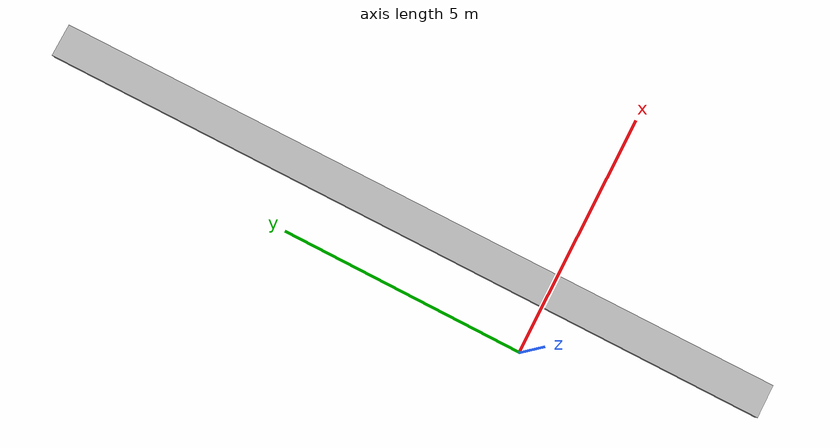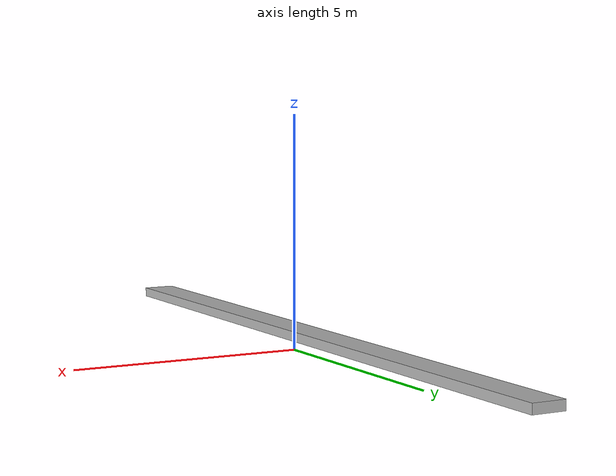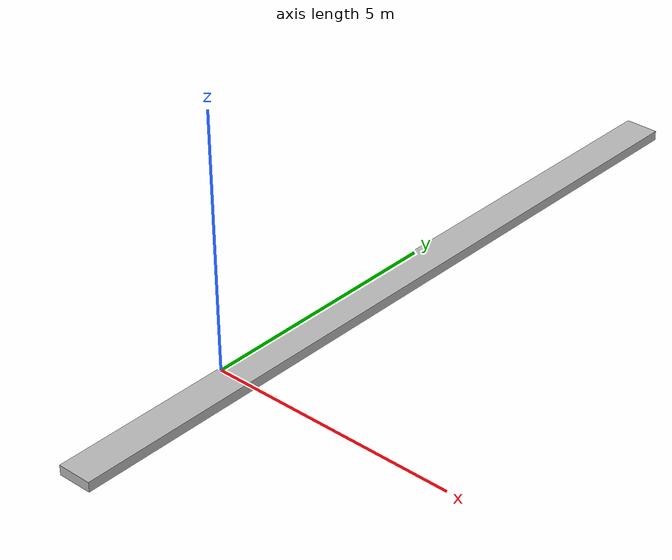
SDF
<?xml version="1.0" ?>
<sdf version="1.6">
  <model name="conveyor_belt">

      <model name="conveyor_belt_fixed">
        <static>true</static>
        <pose>1.21 5 0.8126 0 0 -1.57079</pose>
        <link name="link">
          <pose>0 0 0 0 0 0</pose>
        </link>
      </model>

      <model name="conveyor_belt_moving">
        <static>false</static>
        <pose>1.21 -2 0.8126 0 0 -1.57079</pose>
        <link name="belt">
          <pose>-5 0 0 0 0 0</pose>
          <inertial>
            <inertia>
              <ixx>3.8185</ixx>
              <ixy>0</ixy>
              <ixz>0</ixz>
              <iyy>1781.5</iyy>
              <iyz>0</iyz>
              <izz>1784.72</izz>
            </inertia>
            <mass>100</mass>
          </inertial>
          <!--Uncomment for debugging -->

          <visual name="belt_visual">
            <geometry>
              <box>
                <size>14.62206 0.65461 0.18862</size>
              </box>
            </geometry>
          </visual>

          <collision name="belt_collision">
            <geometry>
              <box>
                <size>14.62206 0.65461 0.18862</size>
              </box>
            </geometry>
            <surface>
              <friction>
                <ode>
                  <mu>1.0</mu>
                  <mu2>1.0</mu2>
                </ode>
                <torsional>
                  <coefficient>1000.0</coefficient>
                  <patch_radius>0.1</patch_radius>
                </torsional>
              </friction>
            </surface>
          </collision>
        </link>
      </model>

      <joint name="belt_joint" type="prismatic">
        <parent>conveyor_belt_fixed::link</parent>
        <child>conveyor_belt_moving::belt</child>
        <axis>
          <xyz>1 0 0</xyz>
          <limit>
            <lower>0</lower>
            <upper>1.0</upper>
          </limit>
        </axis>
      </joint>

  </model>
</sdf>
